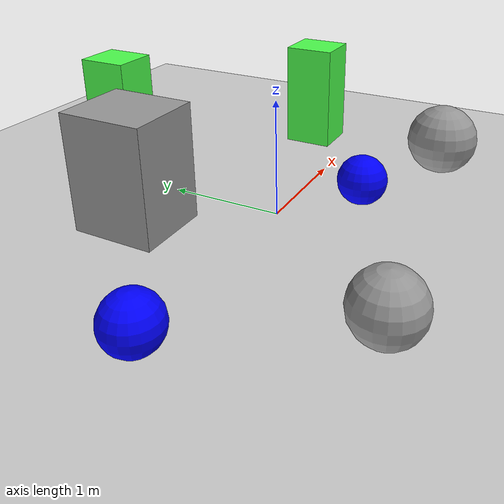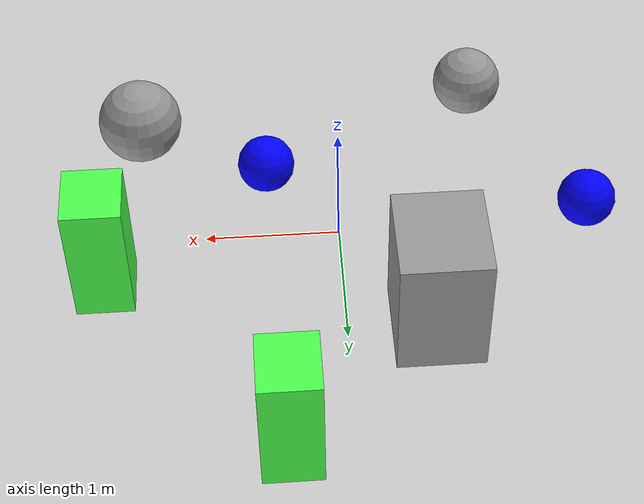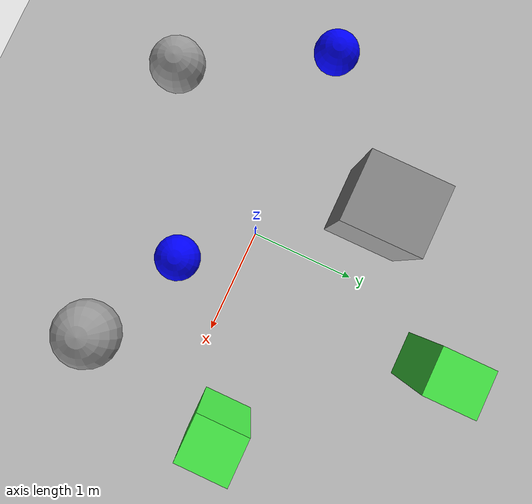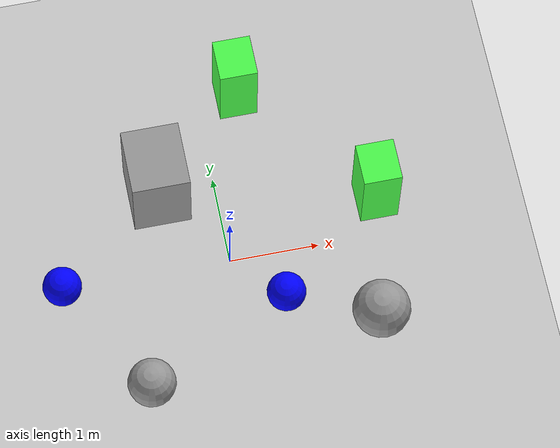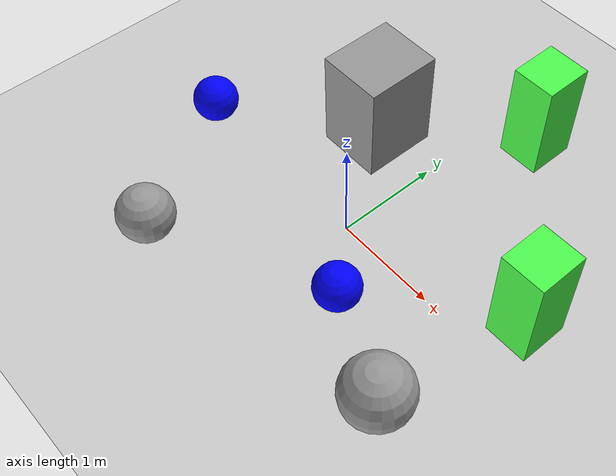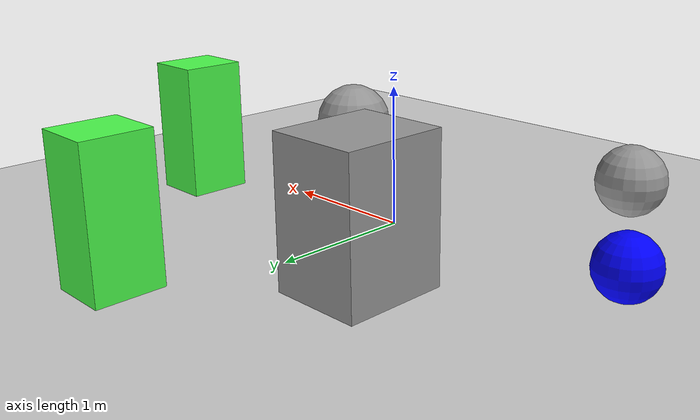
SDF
<sdf version="1.6">
 <world name="default">
  <light name="sun" type="directional">
   <pose>0 0 10 0 -0 0</pose>
   <diffuse>0.8 0.8 0.8 1</diffuse>
   <specular>0.2 0.2 0.2 1</specular>
   <attenuation>
    <range>1000</range>
    <constant>0.9</constant>
    <linear>0.01</linear>
    <quadratic>0.001</quadratic>
   </attenuation>
   <direction>-0.5 0.1 -0.9</direction>
   <spot><inner_angle>0</inner_angle><outer_angle>0</outer_angle><falloff>0</falloff></spot>
  </light>
  <model name="ground_plane">
   <static>1</static>
   <link name="link">
    <collision name="collision">
     <geometry><plane><normal>0 0 1</normal><size>100 100</size></plane></geometry>
     <surface><friction><ode><mu>100</mu><mu2>50</mu2></ode></friction></surface>
    </collision>
    <visual name="visual">
     <cast_shadows>0</cast_shadows>
     <geometry><plane><normal>0 0 1</normal><size>100 100</size></plane></geometry>
     <material>
      <script><uri>file://media/materials/scripts/gazebo.material</uri><name>Gazebo/Grey</name></script>
     </material>
    </visual>
   </link>
  </model>
  <gravity>0 0 -9.8</gravity>
  <magnetic_field>6e-06 2.3e-05 -4.2e-05</magnetic_field>
  <atmosphere type="adiabatic"/>
  <physics type="ode">
   <max_step_size>0.001</max_step_size>
   <real_time_factor>1</real_time_factor>
   <real_time_update_rate>1000</real_time_update_rate>
  </physics>
  <scene><ambient>0.4 0.4 0.4 1</ambient><background>0.7 0.7 0.7 1</background><shadows>1</shadows></scene>
  <audio><device>default</device></audio>
  <spherical_coordinates>
   <surface_model>EARTH_WGS84</surface_model>
   <latitude_deg>0</latitude_deg>
   <longitude_deg>0</longitude_deg>
   <elevation>0</elevation>
   <heading_deg>0</heading_deg>
  </spherical_coordinates>
  <model name="unit_box">
   <link name="link">
    <inertial>
     <mass>1</mass>
     <inertia>
      <ixx>0.166667</ixx>
      <ixy>0</ixy>
      <ixz>0</ixz>
      <iyy>0.166667</iyy>
      <iyz>0</iyz>
      <izz>0.166667</izz>
     </inertia>
    </inertial>
    <visual name="visual">
     <geometry><box><size>0.421888 0.466179 1</size></box></geometry>
     <material>
      <script><name>Gazebo/Grey</name><uri>file://media/materials/scripts/gazebo.material</uri></script>
      <shader type="pixel"><normal_map>__default__</normal_map></shader>
      <ambient>0.3 1 0.3 1</ambient>
      <diffuse>0.7 0.7 0.7 1</diffuse>
      <specular>0.01 0.01 0.01 1</specular>
      <emissive>0 0 0 1</emissive>
     </material>
    </visual>
    <collision name="collision">
     <geometry><box><size>0.421888 0.466179 1</size></box></geometry>
     <surface>
      <friction>
       <ode><mu>1</mu><mu2>1</mu2><fdir1>0 0 0</fdir1><slip1>0</slip1><slip2>0</slip2></ode>
       <torsional>
        <coefficient>1</coefficient>
        <patch_radius>0</patch_radius>
        <surface_radius>0</surface_radius>
        <use_patch_radius>1</use_patch_radius>
        <ode><slip>0</slip></ode>
       </torsional>
      </friction>
      <bounce><restitution_coefficient>0</restitution_coefficient><threshold>1e+06</threshold></bounce>
      <contact>
       <collide_without_contact>0</collide_without_contact>
       <collide_without_contact_bitmask>1</collide_without_contact_bitmask>
       <collide_bitmask>1</collide_bitmask>
       <ode>
        <soft_cfm>0</soft_cfm>
        <soft_erp>0.2</soft_erp>
        <kp>1e+13</kp>
        <kd>1</kd>
        <max_vel>0.01</max_vel>
        <min_depth>0</min_depth>
       </ode>
       <bullet>
        <split_impulse>1</split_impulse>
        <split_impulse_penetration_threshold>-0.01</split_impulse_penetration_threshold>
        <soft_cfm>0</soft_cfm>
        <soft_erp>0.2</soft_erp>
        <kp>1e+13</kp>
        <kd>1</kd>
       </bullet>
      </contact>
     </surface>
    </collision>
   </link>
   <static>0</static>
   <pose>0.44629 1.96253 0.499998 5e-06 3e-06 -1.9e-05</pose>
  </model>
  <model name="unit_box_0">
   <link name="link">
    <inertial>
     <mass>1</mass>
     <inertia>
      <ixx>0.166667</ixx>
      <ixy>0</ixy>
      <ixz>0</ixz>
      <iyy>0.166667</iyy>
      <iyz>0</iyz>
      <izz>0.166667</izz>
     </inertia>
    </inertial>
    <visual name="visual">
     <geometry><box><size>0.421888 0.466179 1</size></box></geometry>
     <material>
      <script><name>Gazebo/Grey</name><uri>file://media/materials/scripts/gazebo.material</uri></script>
      <shader type="pixel"><normal_map>__default__</normal_map></shader>
      <ambient>0.3 1 0.3 1</ambient>
      <diffuse>0.7 0.7 0.7 1</diffuse>
      <specular>0.01 0.01 0.01 1</specular>
      <emissive>0 0 0 1</emissive>
     </material>
    </visual>
    <collision name="collision">
     <geometry><box><size>0.421888 0.466179 1</size></box></geometry>
     <surface>
      <friction>
       <ode><mu>1</mu><mu2>1</mu2><fdir1>0 0 0</fdir1><slip1>0</slip1><slip2>0</slip2></ode>
       <torsional>
        <coefficient>1</coefficient>
        <patch_radius>0</patch_radius>
        <surface_radius>0</surface_radius>
        <use_patch_radius>1</use_patch_radius>
        <ode><slip>0</slip></ode>
       </torsional>
      </friction>
      <bounce><restitution_coefficient>0</restitution_coefficient><threshold>1e+06</threshold></bounce>
      <contact>
       <collide_without_contact>0</collide_without_contact>
       <collide_without_contact_bitmask>1</collide_without_contact_bitmask>
       <collide_bitmask>1</collide_bitmask>
       <ode>
        <soft_cfm>0</soft_cfm>
        <soft_erp>0.2</soft_erp>
        <kp>1e+13</kp>
        <kd>1</kd>
        <max_vel>0.01</max_vel>
        <min_depth>0</min_depth>
       </ode>
       <bullet>
        <split_impulse>1</split_impulse>
        <split_impulse_penetration_threshold>-0.01</split_impulse_penetration_threshold>
        <soft_cfm>0</soft_cfm>
        <soft_erp>0.2</soft_erp>
        <kp>1e+13</kp>
        <kd>1</kd>
       </bullet>
      </contact>
     </surface>
    </collision>
   </link>
   <static>0</static>
   <pose>1.72783 0.424678 0.5 1e-06 -0 -6.4e-05</pose>
  </model>
  <model name="unit_sphere">
   <link name="link">
    <inertial>
     <mass>1</mass>
     <inertia><ixx>0.1</ixx><ixy>0</ixy><ixz>0</ixz><iyy>0.1</iyy><iyz>0</iyz><izz>0.1</izz></inertia>
    </inertial>
    <visual name="visual">
     <geometry><sphere><radius>0.216409</radius></sphere></geometry>
     <material>
      <script><name>Gazebo/Grey</name><uri>file://media/materials/scripts/gazebo.material</uri></script>
      <shader type="pixel"><normal_map>__default__</normal_map></shader>
      <ambient>0 0 1 0</ambient>
      <diffuse>0.7 0.7 0.7 1</diffuse>
      <specular>0.01 0.01 0.01 1</specular>
      <emissive>0 0 0 1</emissive>
     </material>
    </visual>
    <collision name="collision">
     <geometry><sphere><radius>0.216409</radius></sphere></geometry>
     <surface>
      <friction>
       <ode><mu>1</mu><mu2>1</mu2><fdir1>0 0 0</fdir1><slip1>0</slip1><slip2>0</slip2></ode>
       <torsional>
        <coefficient>1</coefficient>
        <patch_radius>0</patch_radius>
        <surface_radius>0</surface_radius>
        <use_patch_radius>1</use_patch_radius>
        <ode><slip>0</slip></ode>
       </torsional>
      </friction>
      <bounce><restitution_coefficient>0</restitution_coefficient><threshold>1e+06</threshold></bounce>
      <contact>
       <collide_without_contact>0</collide_without_contact>
       <collide_without_contact_bitmask>1</collide_without_contact_bitmask>
       <collide_bitmask>1</collide_bitmask>
       <ode>
        <soft_cfm>0</soft_cfm>
        <soft_erp>0.2</soft_erp>
        <kp>1e+13</kp>
        <kd>1</kd>
        <max_vel>0.01</max_vel>
        <min_depth>0</min_depth>
       </ode>
       <bullet>
        <split_impulse>1</split_impulse>
        <split_impulse_penetration_threshold>-0.01</split_impulse_penetration_threshold>
        <soft_cfm>0</soft_cfm>
        <soft_erp>0.2</soft_erp>
        <kp>1e+13</kp>
        <kd>1</kd>
       </bullet>
      </contact>
     </surface>
    </collision>
   </link>
   <static>0</static>
   <pose>-1.87133 -0.019862 0.216409 0 -0 0</pose>
  </model>
  <model name="unit_sphere_0">
   <link name="link">
    <inertial>
     <mass>1</mass>
     <inertia><ixx>0.1</ixx><ixy>0</ixy><ixz>0</ixz><iyy>0.1</iyy><iyz>0</iyz><izz>0.1</izz></inertia>
    </inertial>
    <visual name="visual">
     <geometry><sphere><radius>0.216409</radius></sphere></geometry>
     <material>
      <script><name>Gazebo/Grey</name><uri>file://media/materials/scripts/gazebo.material</uri></script>
      <shader type="pixel"><normal_map>__default__</normal_map></shader>
      <ambient>0 0 1 0</ambient>
      <diffuse>0.7 0.7 0.7 1</diffuse>
      <specular>0.01 0.01 0.01 1</specular>
      <emissive>0 0 0 1</emissive>
     </material>
    </visual>
    <collision name="collision">
     <geometry><sphere><radius>0.216409</radius></sphere></geometry>
     <surface>
      <friction>
       <ode><mu>1</mu><mu2>1</mu2><fdir1>0 0 0</fdir1><slip1>0</slip1><slip2>0</slip2></ode>
       <torsional>
        <coefficient>1</coefficient>
        <patch_radius>0</patch_radius>
        <surface_radius>0</surface_radius>
        <use_patch_radius>1</use_patch_radius>
        <ode><slip>0</slip></ode>
       </torsional>
      </friction>
      <bounce><restitution_coefficient>0</restitution_coefficient><threshold>1e+06</threshold></bounce>
      <contact>
       <collide_without_contact>0</collide_without_contact>
       <collide_without_contact_bitmask>1</collide_without_contact_bitmask>
       <collide_bitmask>1</collide_bitmask>
       <ode>
        <soft_cfm>0</soft_cfm>
        <soft_erp>0.2</soft_erp>
        <kp>1e+13</kp>
        <kd>1</kd>
        <max_vel>0.01</max_vel>
        <min_depth>0</min_depth>
       </ode>
       <bullet>
        <split_impulse>1</split_impulse>
        <split_impulse_penetration_threshold>-0.01</split_impulse_penetration_threshold>
        <soft_cfm>0</soft_cfm>
        <soft_erp>0.2</soft_erp>
        <kp>1e+13</kp>
        <kd>1</kd>
       </bullet>
      </contact>
     </surface>
    </collision>
   </link>
   <static>0</static>
   <pose>0.518208 -0.55484 0.216409 0 -0 0</pose>
  </model>
  <model name="unit_box_1">
   <pose>-0.638128 0.945623 0.499995 -8e-06 5e-06 -0.001183</pose>
   <link name="link">
    <inertial>
     <mass>1</mass>
     <inertia>
      <ixx>0.166667</ixx>
      <ixy>0</ixy>
      <ixz>0</ixz>
      <iyy>0.166667</iyy>
      <iyz>0</iyz>
      <izz>0.166667</izz>
     </inertia>
    </inertial>
    <collision name="collision"><geometry><box><size>0.638762 0.725247 1</size></box></geometry></collision>
    <visual name="visual">
     <geometry><box><size>0.638762 0.725247 1</size></box></geometry>
     <material>
      <script><name>Gazebo/Grey</name><uri>file://media/materials/scripts/gazebo.material</uri></script>
     </material>
    </visual>
   </link>
  </model>
  <model name="unit_sphere_1">
   <pose>-1.11928 -1.32459 0.26507 0 -0 0</pose>
   <link name="link">
    <inertial>
     <mass>1</mass>
     <inertia><ixx>0.1</ixx><ixy>0</ixy><ixz>0</ixz><iyy>0.1</iyy><iyz>0</iyz><izz>0.1</izz></inertia>
    </inertial>
    <collision name="collision"><geometry><sphere><radius>0.26507</radius></sphere></geometry></collision>
    <visual name="visual">
     <geometry><sphere><radius>0.26507</radius></sphere></geometry>
     <material>
      <script><name>Gazebo/Grey</name><uri>file://media/materials/scripts/gazebo.material</uri></script>
     </material>
    </visual>
   </link>
  </model>
  <model name="unit_sphere_2">
   <pose>1.47949 -0.990235 0.319284 0 -0 0</pose>
   <link name="link">
    <inertial>
     <mass>1</mass>
     <inertia><ixx>0.1</ixx><ixy>0</ixy><ixz>0</ixz><iyy>0.1</iyy><iyz>0</iyz><izz>0.1</izz></inertia>
    </inertial>
    <collision name="collision"><geometry><sphere><radius>0.319284</radius></sphere></geometry></collision>
    <visual name="visual">
     <geometry><sphere><radius>0.319284</radius></sphere></geometry>
     <material>
      <script><name>Gazebo/Grey</name><uri>file://media/materials/scripts/gazebo.material</uri></script>
     </material>
    </visual>
   </link>
  </model>
 </world>
</sdf>
